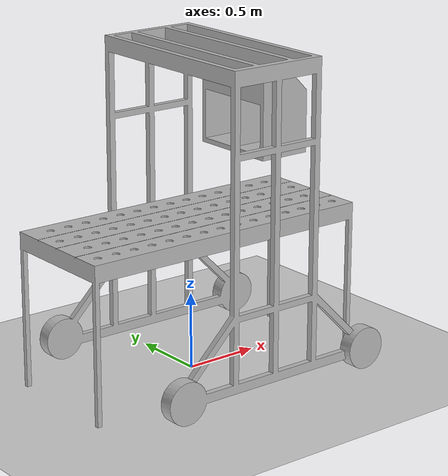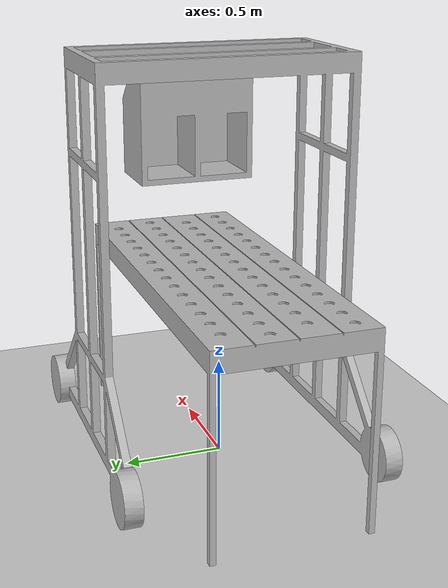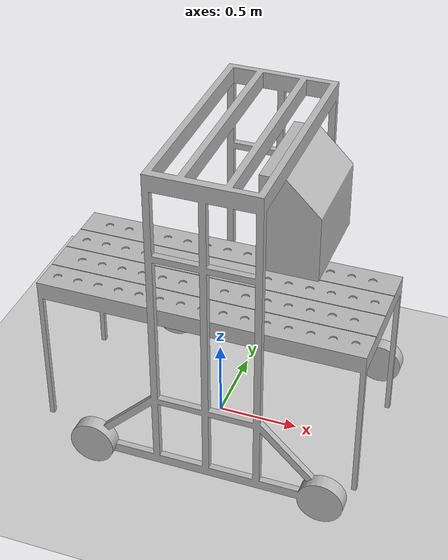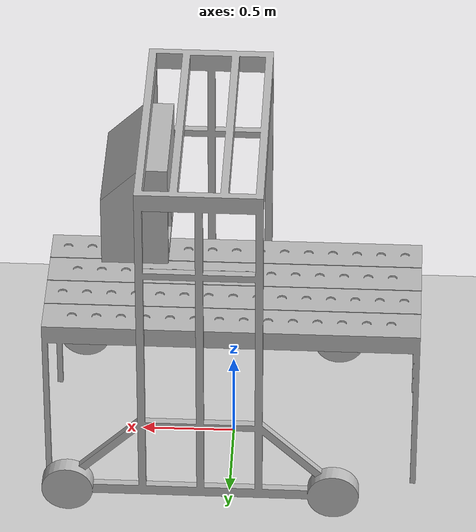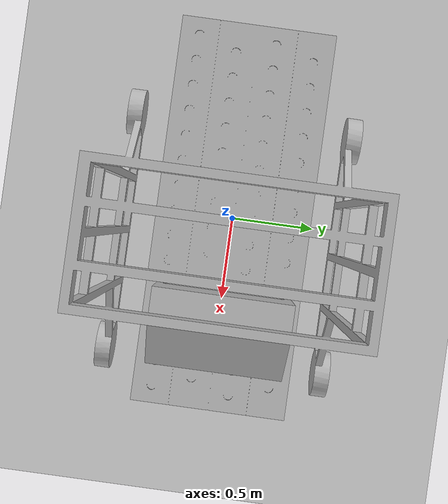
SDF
<sdf version="1.6">
 <world name="default">
  <light name="sun" type="directional">
   <pose>0 0 10 0 -0 0</pose>
   <diffuse>0.8 0.8 0.8 1</diffuse>
   <specular>0.2 0.2 0.2 1</specular>
   <attenuation>
    <range>1000</range>
    <constant>0.9</constant>
    <linear>0.01</linear>
    <quadratic>0.001</quadratic>
   </attenuation>
   <direction>-0.5 0.1 -0.9</direction>
  </light>
  <model name="ground_plane">
   <static>1</static>
   <link name="link">
    <collision name="collision">
     <geometry><plane><normal>0 0 1</normal><size>100 100</size></plane></geometry>
     <surface><friction><ode><mu>100</mu><mu2>50</mu2></ode></friction></surface>
    </collision>
    <visual name="visual">
     <cast_shadows>0</cast_shadows>
     <geometry><plane><normal>0 0 1</normal><size>100 100</size></plane></geometry>
     <material>
      <script><uri>file://media/materials/scripts/gazebo.material</uri><name>Gazebo/Grey</name></script>
     </material>
    </visual>
   </link>
  </model>
  <gravity>0 0 -9.8</gravity>
  <magnetic_field>6e-06 2.3e-05 -4.2e-05</magnetic_field>
  <atmosphere type="adiabatic"/>
  <physics name="default_physics" default="0" type="ode">
   <max_step_size>0.001</max_step_size>
   <real_time_factor>1</real_time_factor>
   <real_time_update_rate>1000</real_time_update_rate>
  </physics>
  <scene><ambient>0.4 0.4 0.4 1</ambient><background>0.7 0.7 0.7 1</background><shadows>1</shadows></scene>
  <spherical_coordinates>
   <surface_model>EARTH_WGS84</surface_model>
   <latitude_deg>0</latitude_deg>
   <longitude_deg>0</longitude_deg>
   <elevation>0</elevation>
   <heading_deg>0</heading_deg>
  </spherical_coordinates>
  <model name="rack">
   <static>1</static>
   <link name="link">
    <inertial><mass>1</mass></inertial>
    <collision name="rack">
     <geometry><mesh><uri>model://rack/meshes/rack.stl</uri><scale>0.001 0.001 0.001</scale></mesh></geometry>
    </collision>
    <visual name="rack">
     <geometry><mesh><uri>model://rack/meshes/rack.stl</uri><scale>0.001 0.001 0.001</scale></mesh></geometry>
    </visual>
   </link>
  </model>
  <model name="gantry">
   <pose>0 0 0.001 0 -0 0</pose>
   <static>1</static>
   <link name="link">
    <inertial><mass>1</mass></inertial>
    <collision name="collision">
     <geometry><mesh><uri>model://gantry/meshes/gantry.stl</uri><scale>0.001 0.001 0.001</scale></mesh></geometry>
    </collision>
    <visual name="visual">
     <geometry><mesh><uri>model://gantry/meshes/gantry.stl</uri><scale>0.001 0.001 0.001</scale></mesh></geometry>
    </visual>
   </link>
  </model>
  <model name="storage">
   <static>1</static>
   <link name="link">
    <inertial><mass>1</mass></inertial>
    <collision name="collision">
     <geometry>
      <mesh><uri>model://storage/meshes/storage.stl</uri><scale>0.001 0.001 0.001</scale></mesh>
     </geometry>
    </collision>
    <visual name="visual">
     <geometry>
      <mesh><uri>model://storage/meshes/storage.stl</uri><scale>0.001 0.001 0.001</scale></mesh>
     </geometry>
    </visual>
   </link>
  </model>
 </world>
</sdf>
